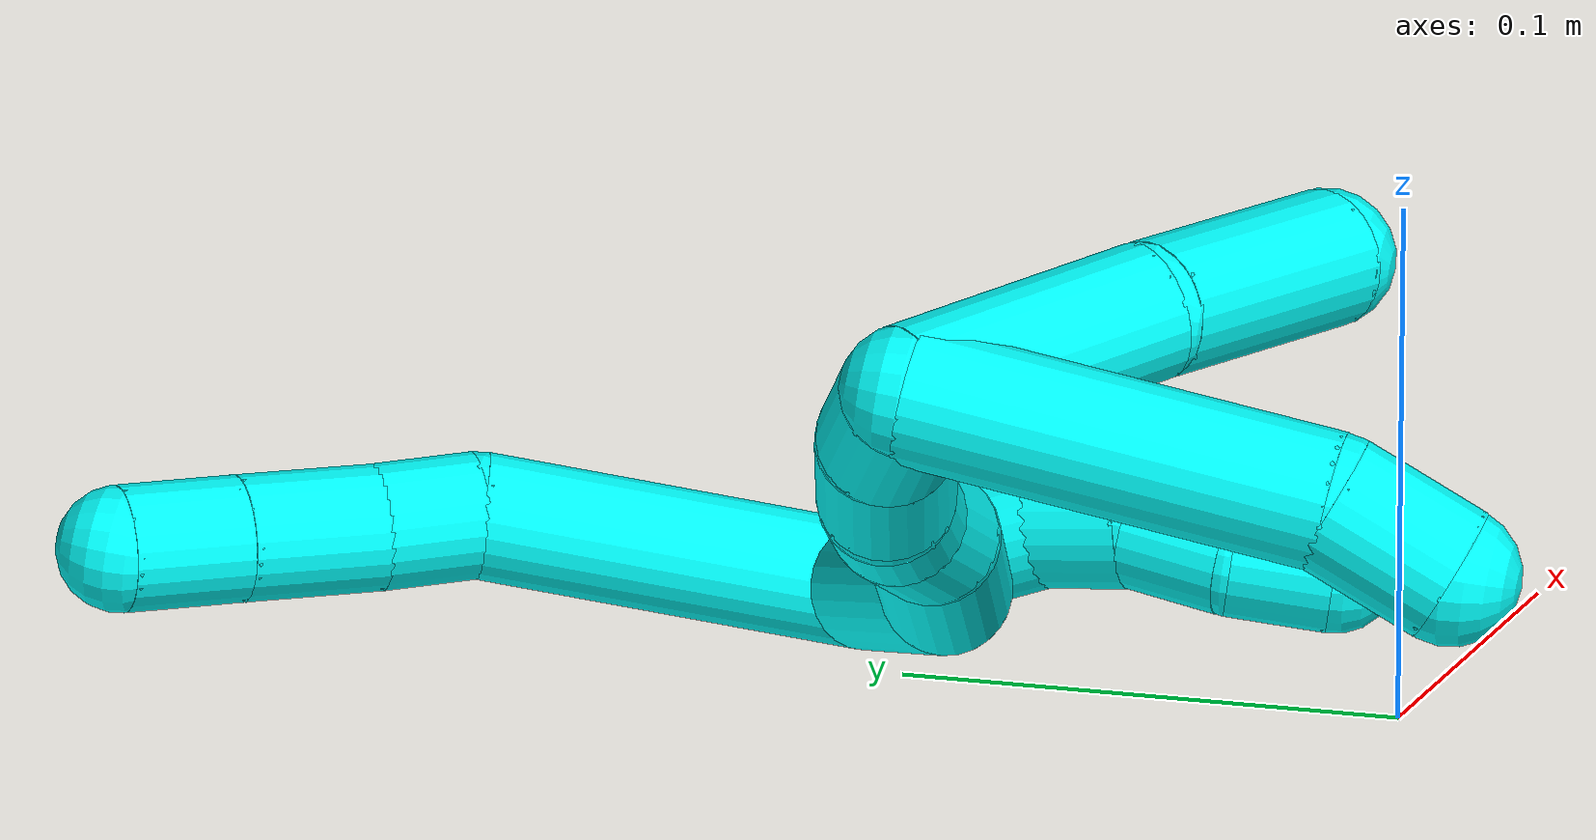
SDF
<sdf version="1.7">
 <world name="default">
  <model name="3">
   <static>0</static>
   <link name="3">
    <collision name="collision-cylinder-e_1_2_8">
     <pose>-0.009993 -0.000533 0.037424 0.014239 -0.260905 -0.001868</pose>
     <geometry><cylinder><radius>0.0125</radius><length>0.077478</length></cylinder></geometry>
     <surface>
      <friction><ode><mu>1.16</mu><mu2>1.16</mu2><slip1>0</slip1><slip2>0</slip2></ode></friction>
      <contact><ode><kp>1e+06</kp><kd>1</kd><max_vel>0</max_vel><min_depth>0.001</min_depth></ode></contact>
     </surface>
    </collision>
    <visual name="visual-cylinder-e_1_2_8">
     <pose>-0.009993 -0.000533 0.037424 0.014239 -0.260905 -0.001868</pose>
     <geometry><cylinder><radius>0.0125</radius><length>0.077478</length></cylinder></geometry>
     <material><ambient>0.003922 1 0.996078 1</ambient></material>
    </visual>
    <collision name="collision-cylinder-e_2_8_9">
     <pose>-0.024104 0.001648 0.083766 -0.29547 -0.416033 0.062802</pose>
     <geometry><cylinder><radius>0.0125</radius><length>0.02038</length></cylinder></geometry>
     <surface>
      <friction><ode><mu>1.16</mu><mu2>1.16</mu2><slip1>0</slip1><slip2>0</slip2></ode></friction>
      <contact><ode><kp>1e+06</kp><kd>1</kd><max_vel>0</max_vel><min_depth>0.001</min_depth></ode></contact>
     </surface>
    </collision>
    <visual name="visual-cylinder-e_2_8_9">
     <pose>-0.024104 0.001648 0.083766 -0.29547 -0.416033 0.062802</pose>
     <geometry><cylinder><radius>0.0125</radius><length>0.02038</length></cylinder></geometry>
     <material><ambient>0.003922 1 0.996078 1</ambient></material>
    </visual>
    <collision name="collision-cylinder-e_3_9_10">
     <pose>-0.035062 0.007344 0.104625 -0.24466 -0.507173 0.063704</pose>
     <geometry><cylinder><radius>0.0125</radius><length>0.028163</length></cylinder></geometry>
     <surface>
      <friction><ode><mu>1.16</mu><mu2>1.16</mu2><slip1>0</slip1><slip2>0</slip2></ode></friction>
      <contact><ode><kp>1e+06</kp><kd>1</kd><max_vel>0</max_vel><min_depth>0.001</min_depth></ode></contact>
     </surface>
    </collision>
    <visual name="visual-cylinder-e_3_9_10">
     <pose>-0.035062 0.007344 0.104625 -0.24466 -0.507173 0.063704</pose>
     <geometry><cylinder><radius>0.0125</radius><length>0.028163</length></cylinder></geometry>
     <material><ambient>0.003922 1 0.996078 1</ambient></material>
    </visual>
    <collision name="collision-cylinder-e_4_10_6">
     <pose>-0.04766 0.012955 0.126749 -0.25276 -0.50107 0.065008</pose>
     <geometry><cylinder><radius>0.0125</radius><length>0.023978</length></cylinder></geometry>
     <surface>
      <friction><ode><mu>1.16</mu><mu2>1.16</mu2><slip1>0</slip1><slip2>0</slip2></ode></friction>
      <contact><ode><kp>1e+06</kp><kd>1</kd><max_vel>0</max_vel><min_depth>0.001</min_depth></ode></contact>
     </surface>
    </collision>
    <visual name="visual-cylinder-e_4_10_6">
     <pose>-0.04766 0.012955 0.126749 -0.25276 -0.50107 0.065008</pose>
     <geometry><cylinder><radius>0.0125</radius><length>0.023978</length></cylinder></geometry>
     <material><ambient>0.003922 1 0.996078 1</ambient></material>
    </visual>
    <collision name="collision-cylinder-e_1_2_11">
     <pose>-0.003566 -0.005219 -0.007749 2.54888 -0.364606 -1.08632</pose>
     <geometry><cylinder><radius>0.0125</radius><length>0.02</length></cylinder></geometry>
     <surface>
      <friction><ode><mu>1.16</mu><mu2>1.16</mu2><slip1>0</slip1><slip2>0</slip2></ode></friction>
      <contact><ode><kp>1e+06</kp><kd>1</kd><max_vel>0</max_vel><min_depth>0.001</min_depth></ode></contact>
     </surface>
    </collision>
    <visual name="visual-cylinder-e_1_2_11">
     <pose>-0.003566 -0.005219 -0.007749 2.54888 -0.364606 -1.08632</pose>
     <geometry><cylinder><radius>0.0125</radius><length>0.02</length></cylinder></geometry>
     <material><ambient>0.003922 1 0.996078 1</ambient></material>
    </visual>
    <collision name="collision-cylinder-e_2_11_12">
     <pose>-0.00803 -0.014818 -0.024443 2.68619 -0.089945 -0.383653</pose>
     <geometry><cylinder><radius>0.0125</radius><length>0.02</length></cylinder></geometry>
     <surface>
      <friction><ode><mu>1.16</mu><mu2>1.16</mu2><slip1>0</slip1><slip2>0</slip2></ode></friction>
      <contact><ode><kp>1e+06</kp><kd>1</kd><max_vel>0</max_vel><min_depth>0.001</min_depth></ode></contact>
     </surface>
    </collision>
    <visual name="visual-cylinder-e_2_11_12">
     <pose>-0.00803 -0.014818 -0.024443 2.68619 -0.089945 -0.383653</pose>
     <geometry><cylinder><radius>0.0125</radius><length>0.02</length></cylinder></geometry>
     <material><ambient>0.003922 1 0.996078 1</ambient></material>
    </visual>
    <collision name="collision-cylinder-e_3_12_13">
     <pose>-0.011524 -0.021106 -0.042854 2.94274 -0.262591 -1.84771</pose>
     <geometry><cylinder><radius>0.0125</radius><length>0.02</length></cylinder></geometry>
     <surface>
      <friction><ode><mu>1.16</mu><mu2>1.16</mu2><slip1>0</slip1><slip2>0</slip2></ode></friction>
      <contact><ode><kp>1e+06</kp><kd>1</kd><max_vel>0</max_vel><min_depth>0.001</min_depth></ode></contact>
     </surface>
    </collision>
    <visual name="visual-cylinder-e_3_12_13">
     <pose>-0.011524 -0.021106 -0.042854 2.94274 -0.262591 -1.84771</pose>
     <geometry><cylinder><radius>0.0125</radius><length>0.02</length></cylinder></geometry>
     <material><ambient>0.003922 1 0.996078 1</ambient></material>
    </visual>
    <collision name="collision-cylinder-e_4_13_14">
     <pose>-0.015402 -0.022222 -0.062207 -3.06162 -0.128598 2.02963</pose>
     <geometry><cylinder><radius>0.0125</radius><length>0.02</length></cylinder></geometry>
     <surface>
      <friction><ode><mu>1.16</mu><mu2>1.16</mu2><slip1>0</slip1><slip2>0</slip2></ode></friction>
      <contact><ode><kp>1e+06</kp><kd>1</kd><max_vel>0</max_vel><min_depth>0.001</min_depth></ode></contact>
     </surface>
    </collision>
    <visual name="visual-cylinder-e_4_13_14">
     <pose>-0.015402 -0.022222 -0.062207 -3.06162 -0.128598 2.02963</pose>
     <geometry><cylinder><radius>0.0125</radius><length>0.02</length></cylinder></geometry>
     <material><ambient>0.003922 1 0.996078 1</ambient></material>
    </visual>
    <collision name="collision-cylinder-e_5_14_5">
     <pose>-0.015571 -0.021642 -0.082028 3.12026 0.111556 2.76401</pose>
     <geometry><cylinder><radius>0.0125</radius><length>0.02</length></cylinder></geometry>
     <surface>
      <friction><ode><mu>1.16</mu><mu2>1.16</mu2><slip1>0</slip1><slip2>0</slip2></ode></friction>
      <contact><ode><kp>1e+06</kp><kd>1</kd><max_vel>0</max_vel><min_depth>0.001</min_depth></ode></contact>
     </surface>
    </collision>
    <visual name="visual-cylinder-e_5_14_5">
     <pose>-0.015571 -0.021642 -0.082028 3.12026 0.111556 2.76401</pose>
     <geometry><cylinder><radius>0.0125</radius><length>0.02</length></cylinder></geometry>
     <material><ambient>0.003922 1 0.996078 1</ambient></material>
    </visual>
    <collision name="collision-cylinder-e_1_2_15">
     <pose>-0.054367 -0.006056 -0.015627 2.77189 -1.27178 -2.64542</pose>
     <geometry><cylinder><radius>0.0125</radius><length>0.113782</length></cylinder></geometry>
     <surface>
      <friction><ode><mu>1.16</mu><mu2>1.16</mu2><slip1>0</slip1><slip2>0</slip2></ode></friction>
      <contact><ode><kp>1e+06</kp><kd>1</kd><max_vel>0</max_vel><min_depth>0.001</min_depth></ode></contact>
     </surface>
    </collision>
    <visual name="visual-cylinder-e_1_2_15">
     <pose>-0.054367 -0.006056 -0.015627 2.77189 -1.27178 -2.64542</pose>
     <geometry><cylinder><radius>0.0125</radius><length>0.113782</length></cylinder></geometry>
     <material><ambient>0.003922 1 0.996078 1</ambient></material>
    </visual>
    <collision name="collision-cylinder-e_2_15_16">
     <pose>-0.156376 -0.020736 -0.035936 2.06811 -1.36765 -1.88035</pose>
     <geometry><cylinder><radius>0.0125</radius><length>0.097286</length></cylinder></geometry>
     <surface>
      <friction><ode><mu>1.16</mu><mu2>1.16</mu2><slip1>0</slip1><slip2>0</slip2></ode></friction>
      <contact><ode><kp>1e+06</kp><kd>1</kd><max_vel>0</max_vel><min_depth>0.001</min_depth></ode></contact>
     </surface>
    </collision>
    <visual name="visual-cylinder-e_2_15_16">
     <pose>-0.156376 -0.020736 -0.035936 2.06811 -1.36765 -1.88035</pose>
     <geometry><cylinder><radius>0.0125</radius><length>0.097286</length></cylinder></geometry>
     <material><ambient>0.003922 1 0.996078 1</ambient></material>
    </visual>
    <collision name="collision-cylinder-e_3_16_17">
     <pose>-0.215399 -0.031468 -0.038933 0.896418 -1.33809 -0.726659</pose>
     <geometry><cylinder><radius>0.0125</radius><length>0.023392</length></cylinder></geometry>
     <surface>
      <friction><ode><mu>1.16</mu><mu2>1.16</mu2><slip1>0</slip1><slip2>0</slip2></ode></friction>
      <contact><ode><kp>1e+06</kp><kd>1</kd><max_vel>0</max_vel><min_depth>0.001</min_depth></ode></contact>
     </surface>
    </collision>
    <visual name="visual-cylinder-e_3_16_17">
     <pose>-0.215399 -0.031468 -0.038933 0.896418 -1.33809 -0.726659</pose>
     <geometry><cylinder><radius>0.0125</radius><length>0.023392</length></cylinder></geometry>
     <material><ambient>0.003922 1 0.996078 1</ambient></material>
    </visual>
    <collision name="collision-cylinder-e_4_17_18">
     <pose>-0.236592 -0.035995 -0.037382 1.62576 -1.32867 -1.38238</pose>
     <geometry><cylinder><radius>0.0125</radius><length>0.020215</length></cylinder></geometry>
     <surface>
      <friction><ode><mu>1.16</mu><mu2>1.16</mu2><slip1>0</slip1><slip2>0</slip2></ode></friction>
      <contact><ode><kp>1e+06</kp><kd>1</kd><max_vel>0</max_vel><min_depth>0.001</min_depth></ode></contact>
     </surface>
    </collision>
    <visual name="visual-cylinder-e_4_17_18">
     <pose>-0.236592 -0.035995 -0.037382 1.62576 -1.32867 -1.38238</pose>
     <geometry><cylinder><radius>0.0125</radius><length>0.020215</length></cylinder></geometry>
     <material><ambient>0.003922 1 0.996078 1</ambient></material>
    </visual>
    <collision name="collision-cylinder-e_5_18_19">
     <pose>-0.256552 -0.043986 -0.038048 1.66605 -1.06675 -1.15213</pose>
     <geometry><cylinder><radius>0.0125</radius><length>0.023176</length></cylinder></geometry>
     <surface>
      <friction><ode><mu>1.16</mu><mu2>1.16</mu2><slip1>0</slip1><slip2>0</slip2></ode></friction>
      <contact><ode><kp>1e+06</kp><kd>1</kd><max_vel>0</max_vel><min_depth>0.001</min_depth></ode></contact>
     </surface>
    </collision>
    <visual name="visual-cylinder-e_5_18_19">
     <pose>-0.256552 -0.043986 -0.038048 1.66605 -1.06675 -1.15213</pose>
     <geometry><cylinder><radius>0.0125</radius><length>0.023176</length></cylinder></geometry>
     <material><ambient>0.003922 1 0.996078 1</ambient></material>
    </visual>
    <collision name="collision-cylinder-e_6_19_1">
     <pose>-0.276107 -0.05473 -0.041296 2.05438 -1.01514 -1.48782</pose>
     <geometry><cylinder><radius>0.0125</radius><length>0.022149</length></cylinder></geometry>
     <surface>
      <friction><ode><mu>1.16</mu><mu2>1.16</mu2><slip1>0</slip1><slip2>0</slip2></ode></friction>
      <contact><ode><kp>1e+06</kp><kd>1</kd><max_vel>0</max_vel><min_depth>0.001</min_depth></ode></contact>
     </surface>
    </collision>
    <visual name="visual-cylinder-e_6_19_1">
     <pose>-0.276107 -0.05473 -0.041296 2.05438 -1.01514 -1.48782</pose>
     <geometry><cylinder><radius>0.0125</radius><length>0.022149</length></cylinder></geometry>
     <material><ambient>0.003922 1 0.996078 1</ambient></material>
    </visual>
    <collision name="collision-cylinder-e_1_1_20">
     <pose>-0.284548 -0.057512 -0.081849 -3.07853 0.02551 -0.768573</pose>
     <geometry><cylinder><radius>0.0125</radius><length>0.075848</length></cylinder></geometry>
     <surface>
      <friction><ode><mu>1.16</mu><mu2>1.16</mu2><slip1>0</slip1><slip2>0</slip2></ode></friction>
      <contact><ode><kp>1e+06</kp><kd>1</kd><max_vel>0</max_vel><min_depth>0.001</min_depth></ode></contact>
     </surface>
    </collision>
    <visual name="visual-cylinder-e_1_1_20">
     <pose>-0.284548 -0.057512 -0.081849 -3.07853 0.02551 -0.768573</pose>
     <geometry><cylinder><radius>0.0125</radius><length>0.075848</length></cylinder></geometry>
     <material><ambient>0.003922 1 0.996078 1</ambient></material>
    </visual>
    <collision name="collision-cylinder-e_2_20_4">
     <pose>-0.282156 -0.05077 -0.130859 -2.77015 0.118315 -0.610732</pose>
     <geometry><cylinder><radius>0.0125</radius><length>0.024152</length></cylinder></geometry>
     <surface>
      <friction><ode><mu>1.16</mu><mu2>1.16</mu2><slip1>0</slip1><slip2>0</slip2></ode></friction>
      <contact><ode><kp>1e+06</kp><kd>1</kd><max_vel>0</max_vel><min_depth>0.001</min_depth></ode></contact>
     </surface>
    </collision>
    <visual name="visual-cylinder-e_2_20_4">
     <pose>-0.282156 -0.05077 -0.130859 -2.77015 0.118315 -0.610732</pose>
     <geometry><cylinder><radius>0.0125</radius><length>0.024152</length></cylinder></geometry>
     <material><ambient>0.003922 1 0.996078 1</ambient></material>
    </visual>
    <collision name="collision-cylinder-e_1_1_21">
     <pose>-0.268892 -0.069844 -0.061173 2.61648 0.697605 1.86872</pose>
     <geometry><cylinder><radius>0.0125</radius><length>0.051758</length></cylinder></geometry>
     <surface>
      <friction><ode><mu>1.16</mu><mu2>1.16</mu2><slip1>0</slip1><slip2>0</slip2></ode></friction>
      <contact><ode><kp>1e+06</kp><kd>1</kd><max_vel>0</max_vel><min_depth>0.001</min_depth></ode></contact>
     </surface>
    </collision>
    <visual name="visual-cylinder-e_1_1_21">
     <pose>-0.268892 -0.069844 -0.061173 2.61648 0.697605 1.86872</pose>
     <geometry><cylinder><radius>0.0125</radius><length>0.051758</length></cylinder></geometry>
     <material><ambient>0.003922 1 0.996078 1</ambient></material>
    </visual>
    <collision name="collision-cylinder-e_2_21_3">
     <pose>-0.232464 -0.086094 -0.090577 2.66587 0.963123 2.27283</pose>
     <geometry><cylinder><radius>0.0125</radius><length>0.048242</length></cylinder></geometry>
     <surface>
      <friction><ode><mu>1.16</mu><mu2>1.16</mu2><slip1>0</slip1><slip2>0</slip2></ode></friction>
      <contact><ode><kp>1e+06</kp><kd>1</kd><max_vel>0</max_vel><min_depth>0.001</min_depth></ode></contact>
     </surface>
    </collision>
    <visual name="visual-cylinder-e_2_21_3">
     <pose>-0.232464 -0.086094 -0.090577 2.66587 0.963123 2.27283</pose>
     <geometry><cylinder><radius>0.0125</radius><length>0.048242</length></cylinder></geometry>
     <material><ambient>0.003922 1 0.996078 1</ambient></material>
    </visual>
    <collision name="collision-sphere-3">
     <pose>-0.212662 -0.092401 -0.10282 0 -0 0</pose>
     <geometry><sphere><radius>0.0125</radius></sphere></geometry>
     <surface>
      <friction><ode><mu>1.16</mu><mu2>1.16</mu2><slip1>0</slip1><slip2>0</slip2></ode></friction>
      <contact><ode><kp>1e+06</kp><kd>1</kd><max_vel>0</max_vel><min_depth>0.001</min_depth></ode></contact>
     </surface>
    </collision>
    <visual name="visual-sphere-3">
     <pose>-0.212662 -0.092401 -0.10282 0 -0 0</pose>
     <geometry><sphere><radius>0.0125</radius></sphere></geometry>
     <material><ambient>0.003922 1 0.996078 1</ambient></material>
    </visual>
    <collision name="collision-sphere-21">
     <pose>-0.252267 -0.079787 -0.078334 0 -0 0</pose>
     <geometry><sphere><radius>0.0125</radius></sphere></geometry>
     <surface>
      <friction><ode><mu>1.16</mu><mu2>1.16</mu2><slip1>0</slip1><slip2>0</slip2></ode></friction>
      <contact><ode><kp>1e+06</kp><kd>1</kd><max_vel>0</max_vel><min_depth>0.001</min_depth></ode></contact>
     </surface>
    </collision>
    <visual name="visual-sphere-21">
     <pose>-0.252267 -0.079787 -0.078334 0 -0 0</pose>
     <geometry><sphere><radius>0.0125</radius></sphere></geometry>
     <material><ambient>0.003922 1 0.996078 1</ambient></material>
    </visual>
    <collision name="collision-sphere-4">
     <pose>-0.28073 -0.046418 -0.142032 0 -0 0</pose>
     <geometry><sphere><radius>0.0125</radius></sphere></geometry>
     <surface>
      <friction><ode><mu>1.16</mu><mu2>1.16</mu2><slip1>0</slip1><slip2>0</slip2></ode></friction>
      <contact><ode><kp>1e+06</kp><kd>1</kd><max_vel>0</max_vel><min_depth>0.001</min_depth></ode></contact>
     </surface>
    </collision>
    <visual name="visual-sphere-4">
     <pose>-0.28073 -0.046418 -0.142032 0 -0 0</pose>
     <geometry><sphere><radius>0.0125</radius></sphere></geometry>
     <material><ambient>0.003922 1 0.996078 1</ambient></material>
    </visual>
    <collision name="collision-sphere-20">
     <pose>-0.283581 -0.055123 -0.119685 0 -0 0</pose>
     <geometry><sphere><radius>0.0125</radius></sphere></geometry>
     <surface>
      <friction><ode><mu>1.16</mu><mu2>1.16</mu2><slip1>0</slip1><slip2>0</slip2></ode></friction>
      <contact><ode><kp>1e+06</kp><kd>1</kd><max_vel>0</max_vel><min_depth>0.001</min_depth></ode></contact>
     </surface>
    </collision>
    <visual name="visual-sphere-20">
     <pose>-0.283581 -0.055123 -0.119685 0 -0 0</pose>
     <geometry><sphere><radius>0.0125</radius></sphere></geometry>
     <material><ambient>0.003922 1 0.996078 1</ambient></material>
    </visual>
    <collision name="collision-sphere-11">
     <pose>-0.007132 -0.010438 -0.015498 0 -0 0</pose>
     <geometry><sphere><radius>0.0125</radius></sphere></geometry>
     <surface>
      <friction><ode><mu>1.16</mu><mu2>1.16</mu2><slip1>0</slip1><slip2>0</slip2></ode></friction>
      <contact><ode><kp>1e+06</kp><kd>1</kd><max_vel>0</max_vel><min_depth>0.001</min_depth></ode></contact>
     </surface>
    </collision>
    <visual name="visual-sphere-11">
     <pose>-0.007132 -0.010438 -0.015498 0 -0 0</pose>
     <geometry><sphere><radius>0.0125</radius></sphere></geometry>
     <material><ambient>0.003922 1 0.996078 1</ambient></material>
    </visual>
    <collision name="collision-sphere-6">
     <pose>-0.05342 0.015585 0.13693 0 -0 0</pose>
     <geometry><sphere><radius>0.0125</radius></sphere></geometry>
     <surface>
      <friction><ode><mu>1.16</mu><mu2>1.16</mu2><slip1>0</slip1><slip2>0</slip2></ode></friction>
      <contact><ode><kp>1e+06</kp><kd>1</kd><max_vel>0</max_vel><min_depth>0.001</min_depth></ode></contact>
     </surface>
    </collision>
    <visual name="visual-sphere-6">
     <pose>-0.05342 0.015585 0.13693 0 -0 0</pose>
     <geometry><sphere><radius>0.0125</radius></sphere></geometry>
     <material><ambient>0.003922 1 0.996078 1</ambient></material>
    </visual>
    <collision name="collision-sphere-10">
     <pose>-0.041901 0.010326 0.116567 0 -0 0</pose>
     <geometry><sphere><radius>0.0125</radius></sphere></geometry>
     <surface>
      <friction><ode><mu>1.16</mu><mu2>1.16</mu2><slip1>0</slip1><slip2>0</slip2></ode></friction>
      <contact><ode><kp>1e+06</kp><kd>1</kd><max_vel>0</max_vel><min_depth>0.001</min_depth></ode></contact>
     </surface>
    </collision>
    <visual name="visual-sphere-10">
     <pose>-0.041901 0.010326 0.116567 0 -0 0</pose>
     <geometry><sphere><radius>0.0125</radius></sphere></geometry>
     <material><ambient>0.003922 1 0.996078 1</ambient></material>
    </visual>
    <collision name="collision-sphere-9">
     <pose>-0.028222 0.004362 0.092683 0 -0 0</pose>
     <geometry><sphere><radius>0.0125</radius></sphere></geometry>
     <surface>
      <friction><ode><mu>1.16</mu><mu2>1.16</mu2><slip1>0</slip1><slip2>0</slip2></ode></friction>
      <contact><ode><kp>1e+06</kp><kd>1</kd><max_vel>0</max_vel><min_depth>0.001</min_depth></ode></contact>
     </surface>
    </collision>
    <visual name="visual-sphere-9">
     <pose>-0.028222 0.004362 0.092683 0 -0 0</pose>
     <geometry><sphere><radius>0.0125</radius></sphere></geometry>
     <material><ambient>0.003922 1 0.996078 1</ambient></material>
    </visual>
    <collision name="collision-sphere-2">
     <geometry><sphere><radius>0.0125</radius></sphere></geometry>
     <surface>
      <friction><ode><mu>1.16</mu><mu2>1.16</mu2><slip1>0</slip1><slip2>0</slip2></ode></friction>
      <contact><ode><kp>1e+06</kp><kd>1</kd><max_vel>0</max_vel><min_depth>0.001</min_depth></ode></contact>
     </surface>
    </collision>
    <visual name="visual-sphere-2">
     <geometry><sphere><radius>0.0125</radius></sphere></geometry>
     <material><ambient>0.003922 1 0.996078 1</ambient></material>
    </visual>
    <collision name="collision-sphere-19">
     <pose>-0.266699 -0.049558 -0.03858 0 -0 0</pose>
     <geometry><sphere><radius>0.0125</radius></sphere></geometry>
     <surface>
      <friction><ode><mu>1.16</mu><mu2>1.16</mu2><slip1>0</slip1><slip2>0</slip2></ode></friction>
      <contact><ode><kp>1e+06</kp><kd>1</kd><max_vel>0</max_vel><min_depth>0.001</min_depth></ode></contact>
     </surface>
    </collision>
    <visual name="visual-sphere-19">
     <pose>-0.266699 -0.049558 -0.03858 0 -0 0</pose>
     <geometry><sphere><radius>0.0125</radius></sphere></geometry>
     <material><ambient>0.003922 1 0.996078 1</ambient></material>
    </visual>
    <collision name="collision-sphere-8">
     <pose>-0.019986 -0.001066 0.074849 0 -0 0</pose>
     <geometry><sphere><radius>0.0125</radius></sphere></geometry>
     <surface>
      <friction><ode><mu>1.16</mu><mu2>1.16</mu2><slip1>0</slip1><slip2>0</slip2></ode></friction>
      <contact><ode><kp>1e+06</kp><kd>1</kd><max_vel>0</max_vel><min_depth>0.001</min_depth></ode></contact>
     </surface>
    </collision>
    <visual name="visual-sphere-8">
     <pose>-0.019986 -0.001066 0.074849 0 -0 0</pose>
     <geometry><sphere><radius>0.0125</radius></sphere></geometry>
     <material><ambient>0.003922 1 0.996078 1</ambient></material>
    </visual>
    <collision name="collision-sphere-12">
     <pose>-0.008928 -0.019199 -0.033387 0 -0 0</pose>
     <geometry><sphere><radius>0.0125</radius></sphere></geometry>
     <surface>
      <friction><ode><mu>1.16</mu><mu2>1.16</mu2><slip1>0</slip1><slip2>0</slip2></ode></friction>
      <contact><ode><kp>1e+06</kp><kd>1</kd><max_vel>0</max_vel><min_depth>0.001</min_depth></ode></contact>
     </surface>
    </collision>
    <visual name="visual-sphere-12">
     <pose>-0.008928 -0.019199 -0.033387 0 -0 0</pose>
     <geometry><sphere><radius>0.0125</radius></sphere></geometry>
     <material><ambient>0.003922 1 0.996078 1</ambient></material>
    </visual>
    <collision name="collision-sphere-13">
     <pose>-0.01412 -0.023014 -0.052321 0 -0 0</pose>
     <geometry><sphere><radius>0.0125</radius></sphere></geometry>
     <surface>
      <friction><ode><mu>1.16</mu><mu2>1.16</mu2><slip1>0</slip1><slip2>0</slip2></ode></friction>
      <contact><ode><kp>1e+06</kp><kd>1</kd><max_vel>0</max_vel><min_depth>0.001</min_depth></ode></contact>
     </surface>
    </collision>
    <visual name="visual-sphere-13">
     <pose>-0.01412 -0.023014 -0.052321 0 -0 0</pose>
     <geometry><sphere><radius>0.0125</radius></sphere></geometry>
     <material><ambient>0.003922 1 0.996078 1</ambient></material>
    </visual>
    <collision name="collision-sphere-14">
     <pose>-0.016685 -0.02143 -0.072092 0 -0 0</pose>
     <geometry><sphere><radius>0.0125</radius></sphere></geometry>
     <surface>
      <friction><ode><mu>1.16</mu><mu2>1.16</mu2><slip1>0</slip1><slip2>0</slip2></ode></friction>
      <contact><ode><kp>1e+06</kp><kd>1</kd><max_vel>0</max_vel><min_depth>0.001</min_depth></ode></contact>
     </surface>
    </collision>
    <visual name="visual-sphere-14">
     <pose>-0.016685 -0.02143 -0.072092 0 -0 0</pose>
     <geometry><sphere><radius>0.0125</radius></sphere></geometry>
     <material><ambient>0.003922 1 0.996078 1</ambient></material>
    </visual>
    <collision name="collision-sphere-5">
     <pose>-0.014458 -0.021854 -0.091964 0 -0 0</pose>
     <geometry><sphere><radius>0.0125</radius></sphere></geometry>
     <surface>
      <friction><ode><mu>1.16</mu><mu2>1.16</mu2><slip1>0</slip1><slip2>0</slip2></ode></friction>
      <contact><ode><kp>1e+06</kp><kd>1</kd><max_vel>0</max_vel><min_depth>0.001</min_depth></ode></contact>
     </surface>
    </collision>
    <visual name="visual-sphere-5">
     <pose>-0.014458 -0.021854 -0.091964 0 -0 0</pose>
     <geometry><sphere><radius>0.0125</radius></sphere></geometry>
     <material><ambient>0.003922 1 0.996078 1</ambient></material>
    </visual>
    <collision name="collision-sphere-15">
     <pose>-0.108733 -0.012111 -0.031254 0 -0 0</pose>
     <geometry><sphere><radius>0.0125</radius></sphere></geometry>
     <surface>
      <friction><ode><mu>1.16</mu><mu2>1.16</mu2><slip1>0</slip1><slip2>0</slip2></ode></friction>
      <contact><ode><kp>1e+06</kp><kd>1</kd><max_vel>0</max_vel><min_depth>0.001</min_depth></ode></contact>
     </surface>
    </collision>
    <visual name="visual-sphere-15">
     <pose>-0.108733 -0.012111 -0.031254 0 -0 0</pose>
     <geometry><sphere><radius>0.0125</radius></sphere></geometry>
     <material><ambient>0.003922 1 0.996078 1</ambient></material>
    </visual>
    <collision name="collision-sphere-16">
     <pose>-0.204018 -0.029362 -0.040617 0 -0 0</pose>
     <geometry><sphere><radius>0.0125</radius></sphere></geometry>
     <surface>
      <friction><ode><mu>1.16</mu><mu2>1.16</mu2><slip1>0</slip1><slip2>0</slip2></ode></friction>
      <contact><ode><kp>1e+06</kp><kd>1</kd><max_vel>0</max_vel><min_depth>0.001</min_depth></ode></contact>
     </surface>
    </collision>
    <visual name="visual-sphere-16">
     <pose>-0.204018 -0.029362 -0.040617 0 -0 0</pose>
     <geometry><sphere><radius>0.0125</radius></sphere></geometry>
     <material><ambient>0.003922 1 0.996078 1</ambient></material>
    </visual>
    <collision name="collision-sphere-17">
     <pose>-0.22678 -0.033575 -0.037249 0 -0 0</pose>
     <geometry><sphere><radius>0.0125</radius></sphere></geometry>
     <surface>
      <friction><ode><mu>1.16</mu><mu2>1.16</mu2><slip1>0</slip1><slip2>0</slip2></ode></friction>
      <contact><ode><kp>1e+06</kp><kd>1</kd><max_vel>0</max_vel><min_depth>0.001</min_depth></ode></contact>
     </surface>
    </collision>
    <visual name="visual-sphere-17">
     <pose>-0.22678 -0.033575 -0.037249 0 -0 0</pose>
     <geometry><sphere><radius>0.0125</radius></sphere></geometry>
     <material><ambient>0.003922 1 0.996078 1</ambient></material>
    </visual>
    <collision name="collision-sphere-18">
     <pose>-0.246405 -0.038415 -0.037515 0 -0 0</pose>
     <geometry><sphere><radius>0.0125</radius></sphere></geometry>
     <surface>
      <friction><ode><mu>1.16</mu><mu2>1.16</mu2><slip1>0</slip1><slip2>0</slip2></ode></friction>
      <contact><ode><kp>1e+06</kp><kd>1</kd><max_vel>0</max_vel><min_depth>0.001</min_depth></ode></contact>
     </surface>
    </collision>
    <visual name="visual-sphere-18">
     <pose>-0.246405 -0.038415 -0.037515 0 -0 0</pose>
     <geometry><sphere><radius>0.0125</radius></sphere></geometry>
     <material><ambient>0.003922 1 0.996078 1</ambient></material>
    </visual>
    <collision name="collision-sphere-1">
     <pose>-0.285516 -0.059901 -0.044012 0 -0 0</pose>
     <geometry><sphere><radius>0.0125</radius></sphere></geometry>
     <surface>
      <friction><ode><mu>1.16</mu><mu2>1.16</mu2><slip1>0</slip1><slip2>0</slip2></ode></friction>
      <contact><ode><kp>1e+06</kp><kd>1</kd><max_vel>0</max_vel><min_depth>0.001</min_depth></ode></contact>
     </surface>
    </collision>
    <visual name="visual-sphere-1">
     <pose>-0.285516 -0.059901 -0.044012 0 -0 0</pose>
     <geometry><sphere><radius>0.0125</radius></sphere></geometry>
     <material><ambient>0.003922 1 0.996078 1</ambient></material>
    </visual>
    <inertial>
     <pose>-0.135051 -0.027932 -0.025913 0 -0 0</pose>
     <mass>0.75</mass>
     <inertia><ixx>-4e-05</ixx><ixy>0</ixy><ixz>0</ixz><iyy>0.000189</iyy><iyz>0</iyz><izz>0.000226</izz></inertia>
    </inertial>
   </link>
   <pose>0.020782 0.114452 0.011469 -1.4237 0.1902 0.156711</pose>
  </model>
 </world>
</sdf>
